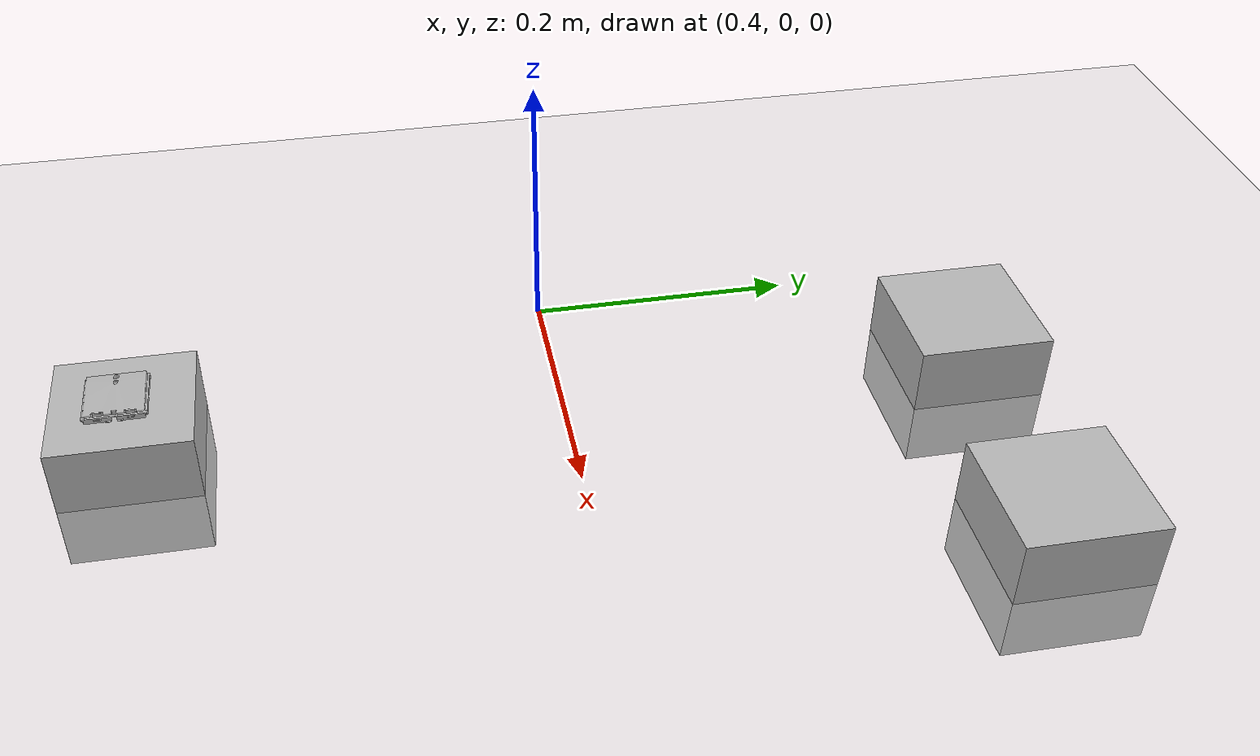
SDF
<sdf version="1.6">
 <world name="default">
  <model name="ground_plane">
   <pose>0.55 0 0 0 -0 0</pose>
   <static>1</static>
   <link name="link">
    <collision name="collision">
     <geometry><plane><normal>0 0 1</normal><size>100 100</size></plane></geometry>
     <surface><friction><ode><mu>100</mu><mu2>50</mu2></ode></friction></surface>
    </collision>
    <visual name="visual">
     <cast_shadows>0</cast_shadows>
     <geometry><plane><normal>0 0 1</normal><size>100 100</size></plane></geometry>
     <material>
      <script><uri>file://media/materials/scripts/gazebo.material</uri><name>Gazebo/Grey</name></script>
     </material>
    </visual>
   </link>
  </model>
  <light name="sun" type="directional">
   <pose>0 0 10 0 -0 0</pose>
   <diffuse>0.8 0.8 0.8 1</diffuse>
   <specular>0.2 0.2 0.2 1</specular>
   <attenuation>
    <range>1000</range>
    <constant>0.9</constant>
    <linear>0.01</linear>
    <quadratic>0.001</quadratic>
   </attenuation>
   <direction>-0.5 0.1 -0.9</direction>
  </light>
  <physics name="default_physics" default="0" type="ode">
   <max_step_size>0.01</max_step_size>
   <real_time_factor>1</real_time_factor>
   <real_time_update_rate>100</real_time_update_rate>
   <ode>
    <solver>
     <type>quick</type>
     <iters>50</iters>
     <sor>1</sor>
     <use_dynamic_moi_rescaling>0</use_dynamic_moi_rescaling>
    </solver>
    <constraints>
     <cfm>0</cfm>
     <erp>0.2</erp>
     <contact_max_correcting_vel>100</contact_max_correcting_vel>
     <contact_surface_layer>0.001</contact_surface_layer>
    </constraints>
   </ode>
  </physics>
  <gravity>0 0 -9.8</gravity>
  <magnetic_field>6e-06 2.3e-05 -4.2e-05</magnetic_field>
  <atmosphere type="adiabatic"/>
  <scene><ambient>0.4 0.4 0.4 1</ambient><background>0.7 0.7 0.7 1</background><shadows>1</shadows></scene>
  <spherical_coordinates>
   <surface_model>EARTH_WGS84</surface_model>
   <latitude_deg>0</latitude_deg>
   <longitude_deg>0</longitude_deg>
   <elevation>0</elevation>
   <heading_deg>0</heading_deg>
  </spherical_coordinates>
  <model name="block_3">
   <link name="block">
    <collision name="block_collsion"><geometry><box><size>0.1 0.1 0.1</size></box></geometry></collision>
    <visual name="block_visual"><geometry><box><size>0.1 0.1 0.1</size></box></geometry></visual>
   </link>
   <static>1</static>
   <pose>0.714659 0.300624 0 0 -0 0</pose>
  </model>
  <model name="block_4">
   <link name="block">
    <collision name="block_collsion"><geometry><box><size>0.1 0.1 0.1</size></box></geometry></collision>
    <visual name="block_visual"><geometry><box><size>0.1 0.1 0.1</size></box></geometry></visual>
   </link>
   <static>1</static>
   <pose>0.519249 0.30593 0 0 -0 0</pose>
  </model>
  <model name="block">
   <link name="block">
    <collision name="block_collsion"><geometry><box><size>0.1 0.1 0.1</size></box></geometry></collision>
    <visual name="block_visual"><geometry><box><size>0.1 0.1 0.1</size></box></geometry></visual>
   </link>
   <static>1</static>
   <pose>0.519911 -0.310834 0 0 -0 0</pose>
  </model>
  <model name="housing_switch">
   <link name="housing_switch">
    <collision name="housing_switch">
     <geometry><mesh><uri>model://house_switch/meshes/housing_switch.dae</uri></mesh></geometry>
    </collision>
    <visual name="housing_switch_visual">
     <geometry><mesh><uri>model://house_switch/meshes/housing_switch.dae</uri></mesh></geometry>
    </visual>
   </link>
   <static>1</static>
   <pose>0.5168 -0.314928 0.050439 0 -0 0</pose>
  </model>
  <model name="block">
   <link name="block">
    <collision name="block_collsion"><geometry><box><size>0.1 0.1 0.1</size></box></geometry></collision>
    <visual name="block_visual"><geometry><box><size>0.1 0.1 0.1</size></box></geometry></visual>
   </link>
   <static>1</static>
   <pose>0.519911 -0.310834 0 0 -0 0</pose>
  </model>
  <model name="block">
   <link name="block">
    <collision name="block_collsion"><geometry><box><size>0.1 0.1 0.1</size></box></geometry></collision>
    <visual name="block_visual"><geometry><box><size>0.1 0.1 0.1</size></box></geometry></visual>
   </link>
   <static>1</static>
   <pose>0.519911 -0.310834 0 0 -0 0</pose>
  </model>
 </world>
</sdf>
